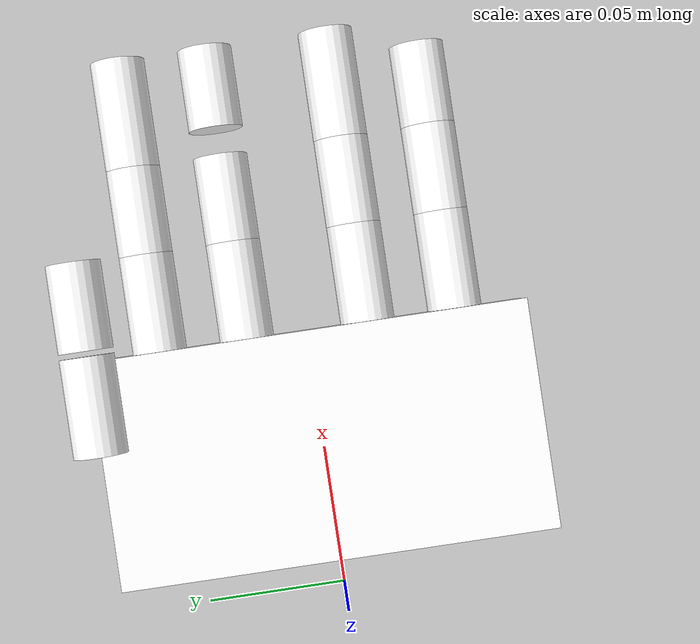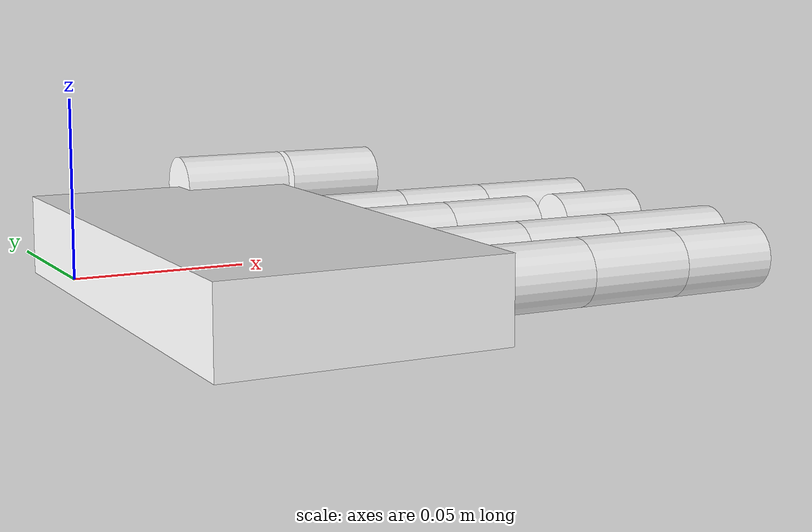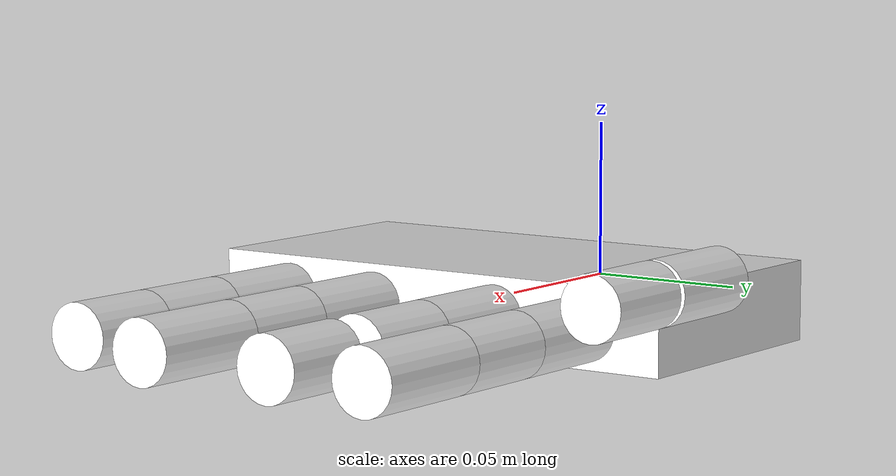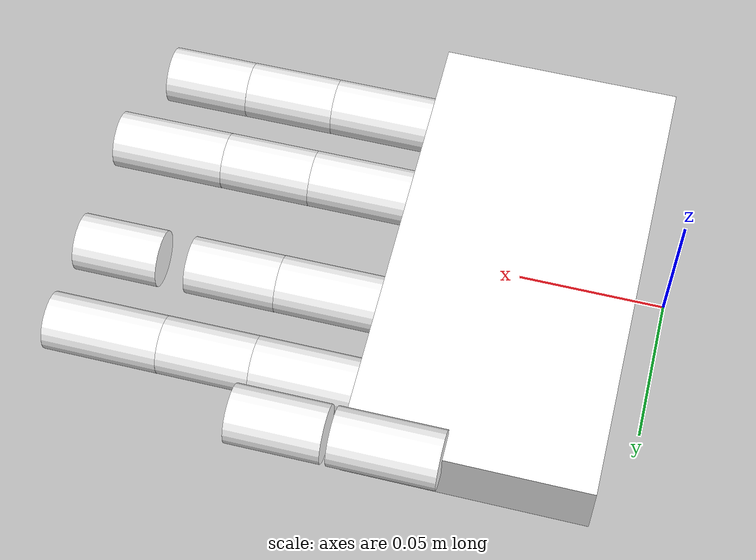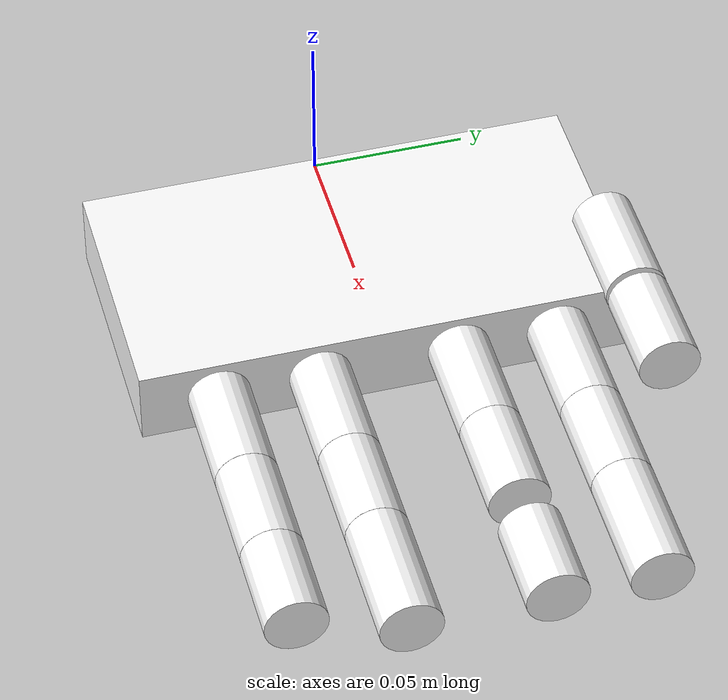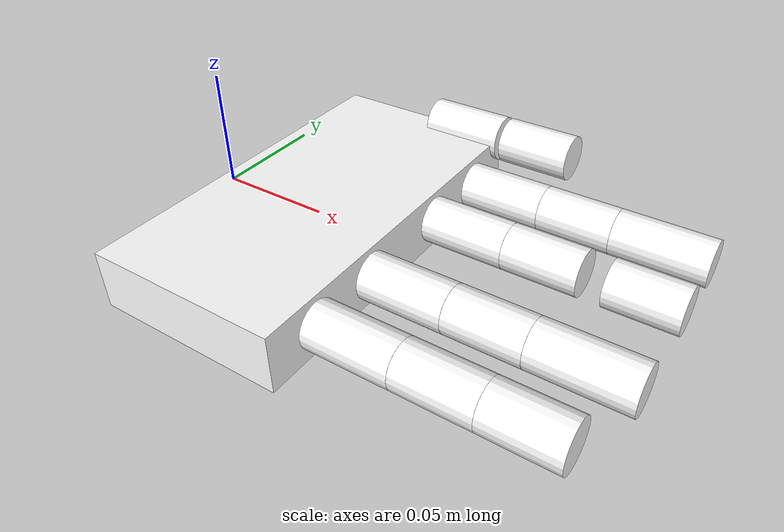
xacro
<?xml version="1.0" ?>

<robot name = "lefthand" xmlns:xacro="http://ros.org/wiki/xacro">

    <!-- Include Materials -->
    <material name="Black">
        <color rgba="0.0 0.0 0.0 1.0"/>
    </material>

    <material name="Red">
        <color rgba="0.8 0.0 0.0 1.0"/>
    </material>

    <material name="White">
        <color rgba="1.0 1.0 1.0 1.0"/>
    </material>

    <!--constants-->
    <xacro:property name="deg_to_rad" value="0.01745329251994329577"/>
    <xacro:property name="M_SCALE" value="0.001 0.001 0.001"/>
    <xacro:property name="M_PI" value="3.14159"/>
    <xacro:property name="rpy" value="1.57 0 1.57"/>

    <!-- BODY -->

    <!-- Carpals Box -->
    <xacro:property name="c_l" value="0.0437" />
    <xacro:property name="c_b" value="0.025" />
    <xacro:property name="c_h" value="0.02" />

    <!-- Metacarpals Box-->
    <xacro:property name="metc_l" value="0.16" />
    <xacro:property name="metc_b" value="0.025" />
    <xacro:property name="metc_h" value="0.0837" />

    <!-- Proximal -->
    <xacro:property name="proxlen" value="0.036"/>
    <xacro:property name="proxrad" value="0.010"/>
    <!-- Intermediate -->
    <xacro:property name="interlen" value="0.032"/>
    <xacro:property name="interrad" value="0.010"/>
    <!-- Distal -->
    <xacro:property name="distlen" value="0.040"/>
    <xacro:property name="distrad" value="0.010"/>

    <xacro:macro name="inertial_matrix" params="mass">
        <inertial>
            <mass value="${mass}"/>
            <inertia ixx="1.0" ixy="0.0" ixz="0.0" iyy="0.5" iyz="0.0" izz="1.0" />
        </inertial>
    </xacro:macro>

    <xacro:macro name="transmission_block" params="joint_name">
        <transmission name="tran1">
            <type>transmission_interface/SimpleTransmission</type>
            <joint name="${prefix}_${joint_name}">
    	      <hardwareInterface>hardware_interface/PositionJointInterface</hardwareInterface>
            </joint>
            <actuator name="motor1">
                <hardwareInterface>hardware_interface/PositionJointInterface</hardwareInterface>
                <mechanicalReduction>1</mechanicalReduction>
            </actuator>
        </transmission>
    </xacro:macro>

    <!-- JOINTS AND LINKS -->
    <!-- XACRO:MACRO HAND -->
    <xacro:macro name="hand" params="prefix reflect metacarpal_origin_x">

        <link name="${prefix}_metacarpal">
            <visual>
                <origin xyz="${reflect*(0.05185)} 0 0" rpy="${rpy}"/>
                <geometry>
                    <box size="${metc_l} ${metc_b} ${metc_h}"/>
                </geometry>
                <material name="White"/>
            </visual>
        </link>

        <gazebo reference="${prefix}_metacarpal">
            <material>Gazebo/Black</material>
        </gazebo>

         <!-- THUMB FINGER PROXIMAL-->

        <joint name="${prefix}_metacarpal_thumb_splay_2" type="continuous">
            <origin xyz="${reflect*(0.06)} 0.08 0.0125" rpy="-1.57 0 0"/>
            <parent link="${prefix}_metacarpal"/>
            <child link="${prefix}_thumb_p_splay2"/>
            <axis xyz="0 0 -1"/>
            <dynamics damping="50" friction="1"/>
        </joint>

        <link name="${prefix}_thumb_p_splay2"></link>  <!-- SPLAY 2 LINK -->

        <!-- THUMB FINGER PROXIMAL-->
        <joint name="${prefix}_thumb_meta_prox" type="continuous">
            <origin xyz="${reflect*0} 0 0" rpy="0 0 0"/>
            <parent link="${prefix}_thumb_p_splay2"/>
            <child link="${prefix}_thumb_p"/>
            <axis xyz="0 1 0"/>
            <dynamics damping="50" friction="1"/>
        </joint>

        <link name="${prefix}_thumb_p">
            <visual>
                <origin xyz="${reflect*(0.018)} 0 0" rpy="1.57 0 1.57"/>
                <geometry>
                    <cylinder radius="${proxrad}" length="${proxlen}"/>
                </geometry>
                <material name="White"/>
            </visual>
            <xacro:inertial_matrix mass="1"/>
        </link>

        <!-- THUMB FINGER INTERMEDIATE-->
        <joint name="${prefix}_thumb_prox_inter" type="continuous">
            <origin xyz="${proxlen} 0 0" rpy="0 0 0"/>
            <parent link="${prefix}_thumb_p"/>
            <child link="${prefix}_thumb_i"/>
            <axis xyz="0 1 0"/>
            <dynamics damping="50" friction="1"/>
        </joint>

        <link name="${prefix}_thumb_i">
            <visual>
                <origin xyz="${reflect*(0.018)} 0 0" rpy="0 1.57 0"/>
                <geometry>
                    <cylinder radius="${interrad}" length="${interlen}"/>
                </geometry>
                <material name="White"/>
            </visual>
            <xacro:inertial_matrix mass="1"/>
        </link>

    <!-- THUMB END -->
        <!-- INDEX FINGER PROXIMAL-->
        <joint name="${prefix}_metacarpal_index" type="continuous">
            <origin xyz="${reflect*(0.0937)} 0 0" rpy="0 0 0"/>
            <parent link="${prefix}_metacarpal"/>
            <child link="${prefix}_index_p"/>
            <axis xyz="0 -1 0"/>
            <dynamics damping="50" friction="1"/>
        </joint>
        <link name="${prefix}_index_p">
            <visual>
                <origin xyz="${reflect*(0.018)} 0.055 0" rpy="${rpy}"/>
                <geometry>
                    <cylinder radius="${proxrad}" length="${proxlen}"/>
                </geometry>
                <material name="White"/>
            </visual>
            <xacro:inertial_matrix mass="1"/>
        </link>

        <!-- INDEX FINGER INTERMEDIATE-->
        <joint name="${prefix}_index_prox_inter" type="continuous">
            <origin xyz="${proxlen} 0 0" rpy="0 0 0"/>
            <parent link="${prefix}_index_p"/>
            <child link="${prefix}_index_i"/>
            <axis xyz="0 -1 0"/>
            <dynamics damping="50" friction="1"/>
        </joint>
        <link name="${prefix}_index_i">
            <visual>
                <origin xyz="${reflect*(0.016)} 0.055 0" rpy="${rpy}"/>
                <geometry>
                    <cylinder radius="${interrad}" length="${interlen}"/>
                </geometry>
                <material name="White"/>
            </visual>

            <xacro:inertial_matrix mass="1"/>
        </link>
        <!-- INDEX FINGER DISTAL-->
        <joint name="${prefix}_index_inter_dist" type="continuous">
            <origin xyz="${interlen} 0 0" rpy="0 0 0"/>
            <parent link="${prefix}_index_i"/>
            <child link="${prefix}_index_d"/>
            <axis xyz="0 -1 0"/>
            <dynamics damping="50" friction="1"/>
        </joint>
        <link name="${prefix}_index_d">
            <visual>
                <origin xyz="${reflect*(0.020)} 0.055 0" rpy="${rpy}"/>
                <geometry>
                    <cylinder radius="${distrad}" length="${distlen}"/>
                </geometry>
                <material name="White"/>
            </visual>

            <xacro:inertial_matrix mass="1"/>
        </link>

        <!-- MIDDLE FINGER PROXIMAL-->
        <joint name="${prefix}_metacarpal_middle" type="continuous">
            <origin xyz="${reflect*(0.0937)} 0 0" rpy="0 0 0"/>
            <parent link="${prefix}_metacarpal"/>
            <child link="${prefix}_middle_p"/>
            <axis xyz="0 -1 0"/>
            <dynamics damping="50" friction="1"/>
        </joint>
        <link name="${prefix}_middle_p">
            <visual>
                <origin xyz="${reflect*(0.018)} 0.0225 0" rpy="${rpy}"/>
                <geometry>
                    <cylinder radius="${proxrad}" length="${proxlen}"/>
                </geometry>
                <material name="White"/>
            </visual>

            <xacro:inertial_matrix mass="1"/>
        </link>

        <!-- MIDDLE FINGER INTERMEDIATE-->
        <joint name="${prefix}_middle_prox_inter" type="continuous">
            <origin xyz="${proxlen} 0 0" rpy="0 0 0"/>
            <parent link="${prefix}_middle_p"/>
            <child link="${prefix}_middle_i"/>
            <axis xyz="0 -1 0"/>
            <dynamics damping="50" friction="1"/>
        </joint>
        <link name="${prefix}_middle_i">
            <visual>
                <origin xyz="${reflect*(0.016)} 0.0225 0" rpy="${rpy}"/>
                <geometry>
                    <cylinder radius="${interrad}" length="${interlen}"/>
                </geometry>
                <material name="White"/>
            </visual>

            <xacro:inertial_matrix mass="1"/>
        </link>
        <!-- MIDDLE FINGER DISTAL-->
        <joint name="${prefix}_middle_inter_dist" type="continuous">
            <origin xyz="${interlen} 0 0" rpy="0 0 0"/>
            <parent link="${prefix}_middle_i"/>
            <child link="${prefix}_middle_d"/>
            <axis xyz="0 -1 0"/>
            <dynamics damping="50" friction="1"/>
        </joint>
        <link name="${prefix}_middle_d">
            <visual>
                <origin xyz="${reflect*(0.025)} 0.0225 0" rpy="${rpy}"/>
                <geometry>
                    <cylinder radius="${distrad}" length="${distlen - 0.01}"/>
                </geometry>
                <material name="White"/>
            </visual>

            <xacro:inertial_matrix mass="1"/>
        </link>

        <!-- RING FINGER PROXIMAL-->
        <joint name="${prefix}_metacarpal_ring" type="continuous">
            <origin xyz="${reflect*(0.0937)} 0 0" rpy="0 0 0"/>
            <parent link="${prefix}_metacarpal"/>
            <child link="${prefix}_ring_p"/>
            <axis xyz="0 -1 0"/>
            <dynamics damping="50" friction="1"/>
        </joint>
        <link name="${prefix}_ring_p">
            <visual>
                <origin xyz="${reflect*(0.018)} -0.0225 0" rpy="${rpy}"/>
                <geometry>
                    <cylinder radius="${proxrad}" length="${proxlen}"/>
                </geometry>
                <material name="White"/>
            </visual>
            <xacro:inertial_matrix mass="1"/>
        </link>

        <!-- RING FINGER INTERMEDIATE-->
        <joint name="${prefix}_ring_prox_inter" type="continuous">
            <origin xyz="${proxlen} 0 0" rpy="0 0 0"/>
            <parent link="${prefix}_ring_p"/>
            <child link="${prefix}_ring_i"/>
            <axis xyz="0 -1 0"/>
            <dynamics damping="50" friction="1"/>
        </joint>
        <link name="${prefix}_ring_i">
            <visual>
                <origin xyz="${reflect*(0.016)} -0.0225 0" rpy="${rpy}"/>
                <geometry>
                    <cylinder radius="${interrad}" length="${interlen}"/>
                </geometry>
                <material name="White"/>
            </visual>

            <xacro:inertial_matrix mass="1"/>
        </link>
        <!-- RING FINGER DISTAL-->
        <joint name="${prefix}_ring_inter_dist" type="continuous">
            <origin xyz="${interlen} 0 0" rpy="0 0 0"/>
            <parent link="${prefix}_ring_i"/>
            <child link="${prefix}_ring_d"/>
            <axis xyz="0 -1 0"/>
            <dynamics damping="50" friction="1"/>
        </joint>
        <link name="${prefix}_ring_d">
            <visual>
                <origin xyz="${reflect*(0.020)} -0.0225 0" rpy="${rpy}"/>
                <geometry>
                    <cylinder radius="${distrad}" length="${distlen}"/>
                </geometry>
                <material name="White"/>
            </visual>

            <xacro:inertial_matrix mass="1"/>
        </link>

        <!-- PINKY FINGER PROXIMAL-->
        <joint name="${prefix}_metacarpal_pinky" type="continuous">
            <origin xyz="${reflect*(0.0937)} 0 0" rpy="0 0 0"/>
            <parent link="${prefix}_metacarpal"/>
            <child link="${prefix}_pinky_p"/>
            <axis xyz="0 -1 0"/>
            <dynamics damping="50" friction="1"/>
        </joint>
        <link name="${prefix}_pinky_p">
            <visual>
                <origin xyz="${reflect*(0.018)} -0.055 0" rpy="${rpy}"/>
                <geometry>
                    <cylinder radius="${proxrad}" length="${proxlen}"/>
                </geometry>
                <material name="White"/>
            </visual>

            <xacro:inertial_matrix mass="1"/>
        </link>

        <!-- PINKY FINGER INTERMEDIATE-->
        <joint name="${prefix}_pinky_prox_inter" type="continuous">
            <origin xyz="${proxlen} 0 0" rpy="0 0 0"/>
            <parent link="${prefix}_pinky_p"/>
            <child link="${prefix}_pinky_i"/>
            <axis xyz="0 -1 0"/>
            <dynamics damping="50" friction="1"/>
        </joint>
        <link name="${prefix}_pinky_i">
            <visual>
                <origin xyz="${reflect*(0.016)} -0.055 0" rpy="${rpy}"/>
                <geometry>
                    <cylinder radius="${interrad}" length="${interlen}"/>
                </geometry>
                <material name="White"/>
            </visual>

            <xacro:inertial_matrix mass="1"/>
        </link>
        <!-- PINKY FINGER DISTAL-->
        <joint name="${prefix}_pinky_inter_dist" type="continuous">
            <origin xyz="${interlen} 0 0" rpy="0 0 0"/>
            <parent link="${prefix}_pinky_i"/>
            <child link="${prefix}_pinky_d"/>
            <axis xyz="0 -1 0"/>
            <dynamics damping="50" friction="1"/>
        </joint>
        <link name="${prefix}_pinky_d">
            <visual>
                <origin xyz="${reflect*(0.015)} -0.055 0" rpy="${rpy}"/>
                <geometry>
                    <cylinder radius="${distrad}" length="${distlen-0.01}"/>
                </geometry>
                <material name="White"/>
            </visual>

            <xacro:inertial_matrix mass="1"/>
        </link>

      <!-- Transmissions for ROS Control -->

        <xacro:transmission_block joint_name="${prefix}_metacarpal_index"/>
        <xacro:transmission_block joint_name="${prefix}_index_prox_inter"/>
        <xacro:transmission_block joint_name="${prefix}_index_inter_dist"/>
        <xacro:transmission_block joint_name="${prefix}_metacarpal_middle"/>
        <xacro:transmission_block joint_name="${prefix}_middle_prox_inter"/>
        <xacro:transmission_block joint_name="${prefix}_middle_inter_dist"/>

        <xacro:transmission_block joint_name="${prefix}_metacarpal_ring"/>
        <xacro:transmission_block joint_name="${prefix}_ring_prox_inter"/>
        <xacro:transmission_block joint_name="${prefix}_ring_inter_dist"/>
        <xacro:transmission_block joint_name="${prefix}_metacarpal_pinky"/>
        <xacro:transmission_block joint_name="${prefix}_pinky_prox_inter"/>
        <xacro:transmission_block joint_name="${prefix}_pinky_inter_dist"/>

        <xacro:transmission_block joint_name="${prefix}_metacarpal_thumb_splay_1"/>
        <xacro:transmission_block joint_name="${prefix}_metacarpal_thumb_splay_2"/>
        <xacro:transmission_block joint_name="${prefix}_metacarpal_thumb"/>
        <xacro:transmission_block joint_name="${prefix}_thumb_prox_inter"/>

     <!-- ros_control plugin -->
      <gazebo>
        <plugin name="gazebo_ros_control" filename="libgazebo_ros_control.so">
          <robotNamespace>/righthand</robotNamespace>
        </plugin>
      </gazebo>

    </xacro:macro>

    <!-- ROOT for both hands -->
    <xacro:property name="origin_x" value="0.05185" />

   <xacro:hand prefix="right" reflect="1.0" metacarpal_origin_x="${2*origin_x}"/>

</robot>
